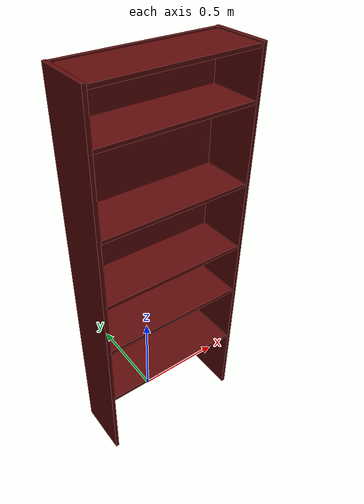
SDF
<?xml version="1.0" ?>
<sdf version="1.5">
  <model name="bookshelf">
    <static>true</static>
    <link name="link">
      <inertial>
        <mass>35.0</mass>
        <pose>0 -0.125 1 0 0 0</pose>
      </inertial>
      <collision name="back_c">
        <pose>0 0.005 1.01 0 0 0</pose>
        <geometry>
          <box>
            <size>0.78 0.01 2.02</size>
          </box>
        </geometry>
      </collision>
      <visual name="back_v">
        <pose>0 0.005 1.01 0 0 0</pose>
        <geometry>
          <box>
            <size>0.78 0.01 2.02</size>
          </box>
        </geometry>
        <material>
          <ambient>0.36 0.035 0.035 1.0</ambient>
          <diffuse>0.36 0.035 0.035 1.0</diffuse>
          <specular>0 0 0 0</specular>
          <emissive>0 0 0 1</emissive>
        </material>
      </visual>
      <collision name="left_c">
        <pose>0.389 -0.125 1.01 0 0 0</pose>
        <geometry>
          <box>
            <size>0.018 0.28 2.02</size>
          </box>
        </geometry>
      </collision>
      <visual name="left_v">
        <pose>0.389 -0.125 1.01 0 0 0</pose>
        <geometry>
          <box>
            <size>0.018 0.28 2.02</size>
          </box>
        </geometry>
        <material>
          <ambient>0.36 0.035 0.035 1.0</ambient>
          <diffuse>0.36 0.035 0.035 1.0</diffuse>
          <specular>0 0 0 0</specular>
          <emissive>0 0 0 1</emissive>
        </material>
      </visual>
      <collision name="right_c">
        <pose>-0.389 -0.125 1.01 0 0 0</pose>
        <geometry>
          <box>
            <size>0.018 0.28 2.02</size>
          </box>
        </geometry>
      </collision>
      <visual name="right_v">
        <pose>-0.389 -0.125 1.01 0 0 0</pose>
        <geometry>
          <box>
            <size>0.018 0.28 2.02</size>
          </box>
        </geometry>
        <material>
          <ambient>0.36 0.035 0.035 1.0</ambient>
          <diffuse>0.36 0.035 0.035 1.0</diffuse>
          <specular>0 0 0 0</specular>
          <emissive>0 0 0 1</emissive>
        </material>
      </visual>
      <collision name="floor1_c">
        <pose>0 -0.125 0.404 0 0 0</pose>
        <geometry>
          <box>
            <size>0.76 0.26 0.018</size>
          </box>
        </geometry>
      </collision>
      <visual name="floor1_v">
        <pose>0 -0.125 0.404 0 0 0</pose>
        <geometry>
          <box>
            <size>0.76 0.26 0.018</size>
          </box>
        </geometry>
        <material>
          <ambient>0.36 0.035 0.035 1.0</ambient>
          <diffuse>0.36 0.035 0.035 1.0</diffuse>
          <specular>0 0 0 0</specular>
          <emissive>0 0 0 1</emissive>
        </material>
      </visual>
      <collision name="floor2_c">
        <pose>0 -0.125 0.757 0 0 0</pose>
        <geometry>
          <box>
            <size>0.76 0.26 0.018</size>
          </box>
        </geometry>
      </collision>
      <visual name="floor2_v">
        <pose>0 -0.125 0.757 0 0 0</pose>
        <geometry>
          <box>
            <size>0.76 0.26 0.018</size>
          </box>
        </geometry>
        <material>
          <ambient>0.36 0.035 0.035 1.0</ambient>
          <diffuse>0.36 0.035 0.035 1.0</diffuse>
          <specular>0 0 0 0</specular>
          <emissive>0 0 0 1</emissive>
        </material>
      </visual>
      <collision name="floor3_c">
        <pose>0 -0.125 1.045 0 0 0</pose>
        <geometry>
          <box>
            <size>0.76 0.26 0.018</size>
          </box>
        </geometry>
      </collision>
      <visual name="floor3_v">
        <pose>0 -0.125 1.045 0 0 0</pose>
        <geometry>
          <box>
            <size>0.76 0.26 0.018</size>
          </box>
        </geometry>
        <material>
          <ambient>0.36 0.035 0.035 1.0</ambient>
          <diffuse>0.36 0.035 0.035 1.0</diffuse>
          <specular>0 0 0 0</specular>
          <emissive>0 0 0 1</emissive>
        </material>
      </visual>
      <collision name="floor4_c">
        <pose>0 -0.125 1.397 0 0 0</pose>
        <geometry>
          <box>
            <size>0.76 0.26 0.018</size>
          </box>
        </geometry>
      </collision>
      <visual name="floor4_v">
        <pose>0 -0.125 1.397 0 0 0</pose>
        <geometry>
          <box>
            <size>0.76 0.26 0.018</size>
          </box>
        </geometry>
        <material>
          <ambient>0.36 0.035 0.035 1.0</ambient>
          <diffuse>0.36 0.035 0.035 1.0</diffuse>
          <specular>0 0 0 0</specular>
          <emissive>0 0 0 1</emissive>
        </material>
      </visual>
      <collision name="floor5_c">
        <pose>0 -0.125 1.781 0 0 0</pose>
        <geometry>
          <box>
            <size>0.76 0.26 0.018</size>
          </box>
        </geometry>
      </collision>
      <visual name="floor5_v">
        <pose>0 -0.125 1.781 0 0 0</pose>
        <geometry>
          <box>
            <size>0.76 0.26 0.018</size>
          </box>
        </geometry>
        <material>
          <ambient>0.36 0.035 0.035 1.0</ambient>
          <diffuse>0.36 0.035 0.035 1.0</diffuse>
          <specular>0 0 0 0</specular>
          <emissive>0 0 0 1</emissive>
        </material>
      </visual>
      <collision name="floor6_c">
        <pose>0 -0.125 2.003 0 0 0</pose>
        <geometry>
          <box>
            <size>0.76 0.26 0.018</size>
          </box>
        </geometry>
      </collision>
      <visual name="floor6_v">
        <pose>0 -0.125 2.003 0 0 0</pose>
        <geometry>
          <box>
            <size>0.76 0.26 0.018</size>
          </box>
        </geometry>
        <material>
          <ambient>0.36 0.035 0.035 1.0</ambient>
          <diffuse>0.36 0.035 0.035 1.0</diffuse>
          <specular>0 0 0 0</specular>
          <emissive>0 0 0 1</emissive>
        </material>
      </visual>
    </link>
  </model>
</sdf>
